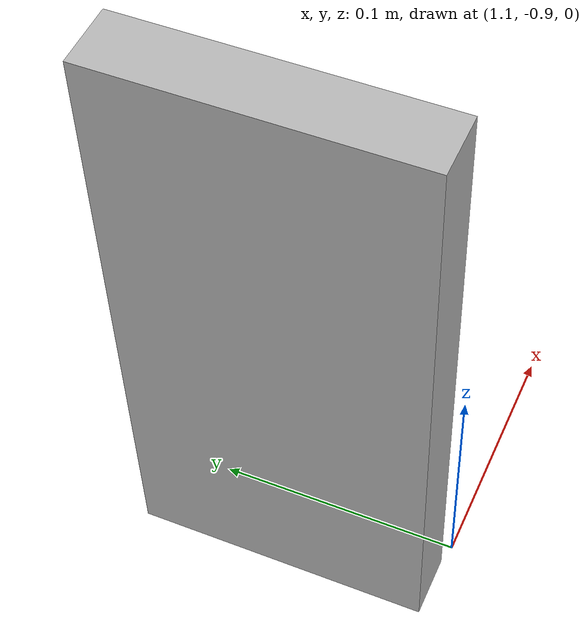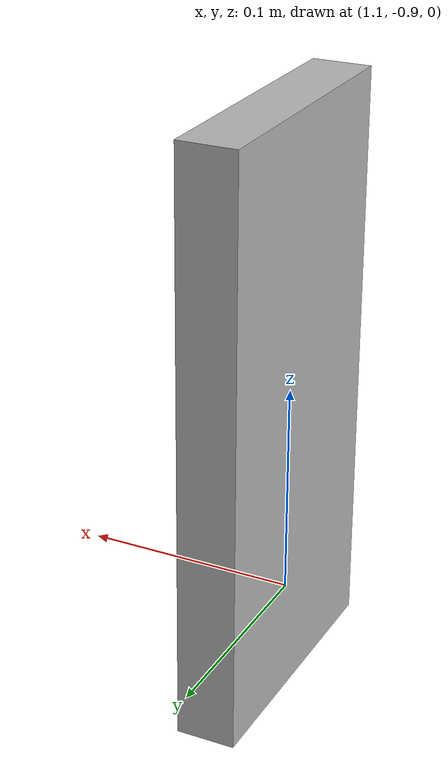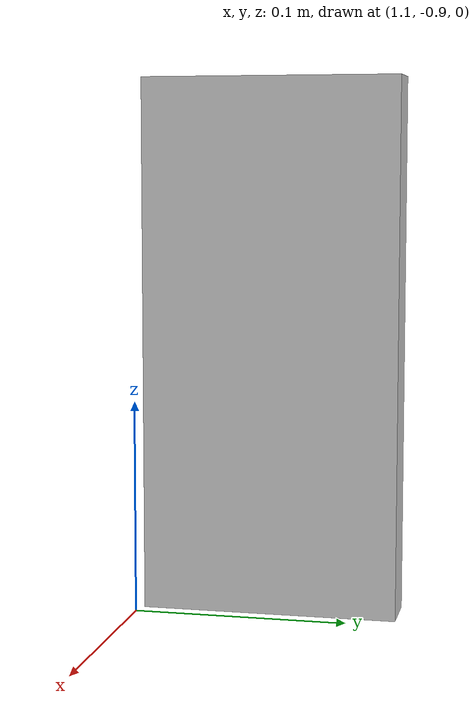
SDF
<?xml version="1.0" ?>
<sdf version="1.6">
  <model name="traffic_left">
    <static>true</static>
    <link name="box">
      <pose>1.08 -0.838 0.125 0 -0 -1.57</pose>
      <collision name="collision">
        <geometry>
          <box>
            <size>0.12 0.025 0.25</size>
          </box>
        </geometry>
      </collision>
      <visual name="visual">
        <geometry>
          <box>
            <size>0.12 0.025 0.25</size>
          </box>
        </geometry>
        <material>
          <script>
            <uri>model://turtlebot3_autorace_2020/traffic_left/materials/scripts</uri>
            <uri>model://turtlebot3_autorace_2020/traffic_left/materials/textures</uri>
            <name>traffic_left</name>
          </script>
        </material>
      </visual>
    </link>
  </model>
</sdf>
